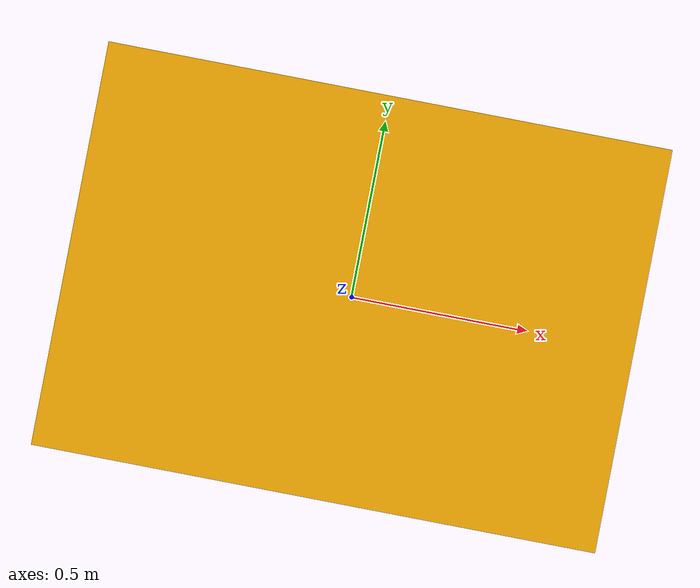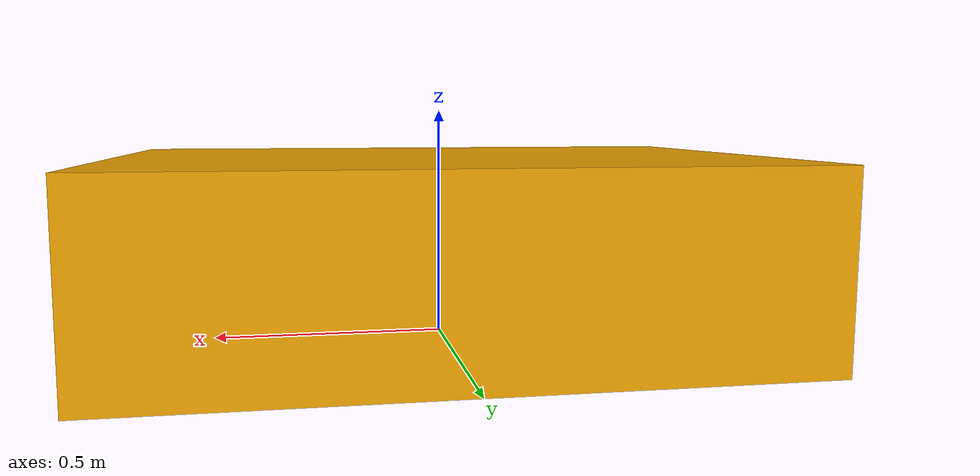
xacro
<?xml version="1.0"?>
<robot name="sev"
  xmlns:xacro="http://ros.org/wiki/xacro">

  <link name="base_link">
    <!-- placholder for SEV MAKE SURE TO CHANGE THIS TO THE SEV CAD-->
    <visual>
      <origin xyz="0 0 0.2" rpy="0 0 0"/>
      <geometry>
        <box size="1.4 1.0 0.4"/>
      </geometry>
    </visual>
  </link>

  <xacro:macro name="camera_mount" params="name x y z roll pitch yaw">
    <link name="${name}_link"/>
    <joint name="base_to_${name}" type="fixed">
      <parent link="base_link"/>
      <child link="${name}_link"/>
      <origin xyz="${x} ${y} ${z}" rpy="${roll} ${pitch} ${yaw}"/>
    </joint>
  </xacro:macro>

  <xacro:camera_mount name="IntelRealSenseD455" x="0.0" y="0.0" z="0.0" roll="0" pitch="0" yaw="0"/>
  <xacro:camera_mount name="IntelRealSenseD455_2" x="-0.234367851" y="0.067184139" z="0.0" roll="0" pitch="0" yaw="1.57079632679"/>

</robot>
